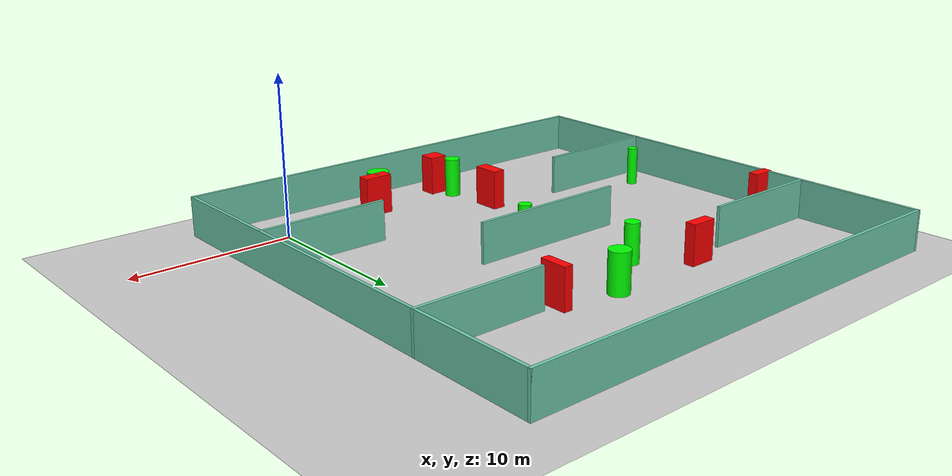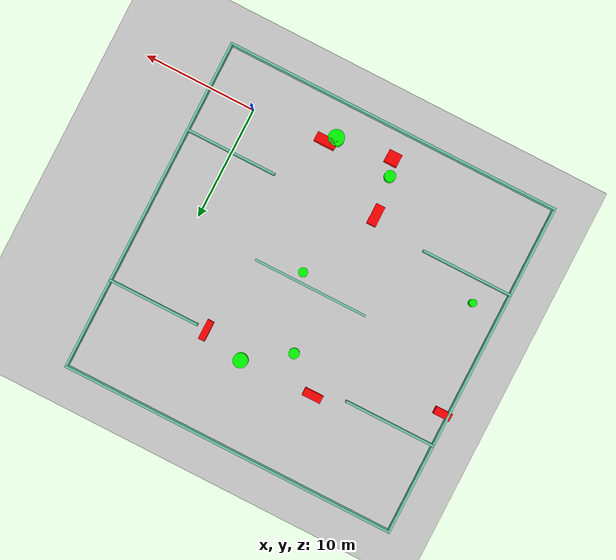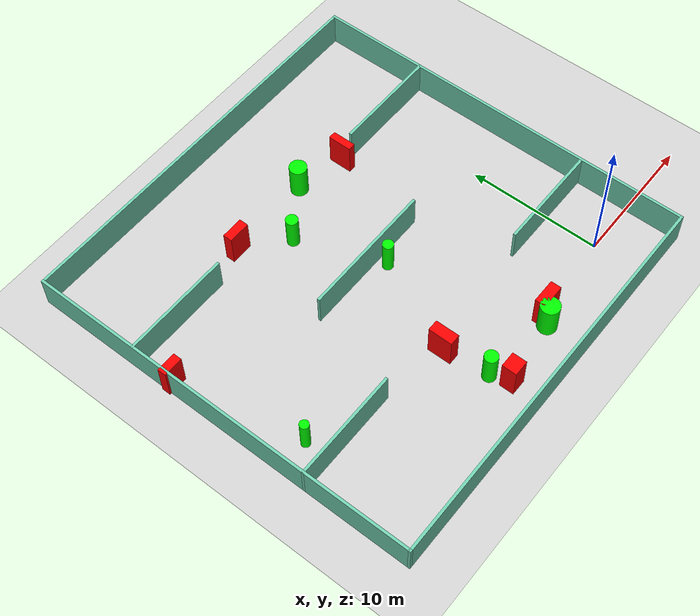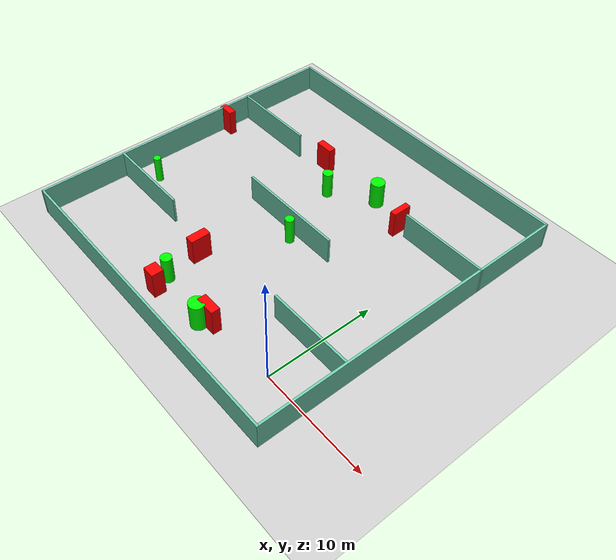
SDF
<sdf version="1.7">
 <world name="default">
  <light name="sun" type="directional">
   <pose>0 0 10 0 -0 0</pose>
   <diffuse>0.8 0.8 0.8 1</diffuse>
   <specular>0.2 0.2 0.2 1</specular>
   <attenuation>
    <range>1000</range>
    <constant>0.9</constant>
    <linear>0.01</linear>
    <quadratic>0.001</quadratic>
   </attenuation>
   <direction>-0.5 0.1 -0.9</direction>
   <spot><inner_angle>0</inner_angle><outer_angle>0</outer_angle><falloff>0</falloff></spot>
  </light>
  <model name="ground_plane">
   <static>1</static>
   <link name="link">
    <collision name="collision">
     <geometry><plane><normal>0 0 1</normal><size>100 100</size></plane></geometry>
     <surface>
      <contact><collide_bitmask>65535</collide_bitmask></contact>
      <friction><ode><mu>100</mu><mu2>50</mu2></ode></friction>
     </surface>
    </collision>
    <visual name="visual">
     <cast_shadows>0</cast_shadows>
     <geometry><plane><normal>0 0 1</normal><size>100 100</size></plane></geometry>
     <material>
      <script><uri>file://media/materials/scripts/gazebo.material</uri><name>Gazebo/Grey</name></script>
     </material>
    </visual>
   </link>
  </model>
  <gravity>0 0 -9.8</gravity>
  <magnetic_field>6e-06 2.3e-05 -4.2e-05</magnetic_field>
  <atmosphere type="adiabatic"/>
  <physics type="ode">
   <max_step_size>0.001</max_step_size>
   <real_time_factor>1</real_time_factor>
   <real_time_update_rate>1000</real_time_update_rate>
  </physics>
  <scene><ambient>0.4 0.4 0.4 1</ambient><background>0.7 0.7 0.7 1</background><shadows>1</shadows></scene>
  <spherical_coordinates>
   <surface_model>EARTH_WGS84</surface_model>
   <latitude_deg>0</latitude_deg>
   <longitude_deg>0</longitude_deg>
   <elevation>0</elevation>
   <heading_deg>0</heading_deg>
  </spherical_coordinates>
  <model name="my_base_walls">
   <link name="Wall_10">
    <collision name="Wall_10_Collision">
     <geometry><box><size>8.2 0.2 2.5</size></box></geometry>
     <pose>0 0 1.25 0 -0 0</pose>
    </collision>
    <visual name="Wall_10_Visual">
     <pose>0 0 1.25 0 -0 0</pose>
     <geometry><box><size>8.2 0.2 2.5</size></box></geometry>
     <material>
      <script><uri>file://media/materials/scripts/gazebo.material</uri><name>Gazebo/Grey</name></script>
      <ambient>0.435294 0.796078 0.67451 1</ambient>
     </material>
     <meta><layer>0</layer></meta>
    </visual>
    <pose>-11 -7 0 0 -0 0</pose>
   </link>
   <link name="Wall_12">
    <collision name="Wall_12_Collision">
     <geometry><box><size>8.2 0.2 2.5</size></box></geometry>
     <pose>0 0 1.25 0 -0 0</pose>
    </collision>
    <visual name="Wall_12_Visual">
     <pose>0 0 1.25 0 -0 0</pose>
     <geometry><box><size>8.2 0.2 2.5</size></box></geometry>
     <material>
      <script><uri>file://media/materials/scripts/gazebo.material</uri><name>Gazebo/Grey</name></script>
      <ambient>0.435294 0.796078 0.67451 1</ambient>
     </material>
     <meta><layer>0</layer></meta>
    </visual>
    <pose>-11 7 0 0 -0 0</pose>
   </link>
   <link name="Wall_14">
    <collision name="Wall_14_Collision">
     <geometry><box><size>8.2 0.2 2.5</size></box></geometry>
     <pose>0 0 1.25 0 -0 0</pose>
    </collision>
    <visual name="Wall_14_Visual">
     <pose>0 0 1.25 0 -0 0</pose>
     <geometry><box><size>8.2 0.2 2.5</size></box></geometry>
     <material>
      <script><uri>file://media/materials/scripts/gazebo.material</uri><name>Gazebo/Grey</name></script>
      <ambient>0.435294 0.796078 0.67451 1</ambient>
     </material>
     <meta><layer>0</layer></meta>
    </visual>
    <pose>11 7 0 0 -0 3.14159</pose>
   </link>
   <link name="Wall_16">
    <collision name="Wall_16_Collision">
     <geometry><box><size>10.2 0.2 2.5</size></box></geometry>
     <pose>0 0 1.25 0 -0 0</pose>
    </collision>
    <visual name="Wall_16_Visual">
     <pose>0 0 1.25 0 -0 0</pose>
     <geometry><box><size>10.2 0.2 2.5</size></box></geometry>
     <material>
      <script><uri>file://media/materials/scripts/gazebo.material</uri><name>Gazebo/Grey</name></script>
      <ambient>0.435294 0.796078 0.67451 1</ambient>
     </material>
     <meta><layer>0</layer></meta>
    </visual>
    <pose>0 0 0 0 -0 3.14159</pose>
   </link>
   <link name="Wall_2">
    <collision name="Wall_2_Collision">
     <geometry><box><size>30.2 0.2 2.5</size></box></geometry>
     <pose>0 0 1.25 0 -0 0</pose>
    </collision>
    <visual name="Wall_2_Visual">
     <pose>0 0 1.25 0 -0 0</pose>
     <geometry><box><size>30.2 0.2 2.5</size></box></geometry>
     <material>
      <script><uri>file://media/materials/scripts/gazebo.material</uri><name>Gazebo/Grey</name></script>
      <ambient>0.435294 0.796078 0.67451 1</ambient>
     </material>
     <meta><layer>0</layer></meta>
    </visual>
    <pose>0 -15 0 0 -0 3.14159</pose>
   </link>
   <link name="Wall_3">
    <collision name="Wall_3_Collision">
     <geometry><box><size>30.2 0.2 2.5</size></box></geometry>
     <pose>0 0 1.25 0 -0 0</pose>
    </collision>
    <visual name="Wall_3_Visual">
     <pose>0 0 1.25 0 -0 0</pose>
     <geometry><box><size>30.2 0.2 2.5</size></box></geometry>
     <material>
      <script><uri>file://media/materials/scripts/gazebo.material</uri><name>Gazebo/Grey</name></script>
      <ambient>0.435294 0.796078 0.67451 1</ambient>
     </material>
     <meta><layer>0</layer></meta>
    </visual>
    <pose>-15 0 0 0 -0 1.5708</pose>
   </link>
   <link name="Wall_4">
    <collision name="Wall_4_Collision">
     <geometry><box><size>30.2 0.2 2.5</size></box></geometry>
     <pose>0 0 1.25 0 -0 0</pose>
    </collision>
    <visual name="Wall_4_Visual">
     <pose>0 0 1.25 0 -0 0</pose>
     <geometry><box><size>30.2 0.2 2.5</size></box></geometry>
     <material>
      <script><uri>file://media/materials/scripts/gazebo.material</uri><name>Gazebo/Grey</name></script>
      <ambient>0.435294 0.796078 0.67451 1</ambient>
     </material>
     <meta><layer>0</layer></meta>
    </visual>
    <pose>0 15 0 0 -0 0</pose>
   </link>
   <link name="Wall_6">
    <collision name="Wall_6_Collision">
     <geometry><box><size>30.2 0.2 2.5</size></box></geometry>
     <pose>0 0 1.25 0 -0 0</pose>
    </collision>
    <visual name="Wall_6_Visual">
     <pose>0 0 1.25 0 -0 0</pose>
     <geometry><box><size>30.2 0.2 2.5</size></box></geometry>
     <material>
      <script><uri>file://media/materials/scripts/gazebo.material</uri><name>Gazebo/Grey</name></script>
      <ambient>0.435294 0.796078 0.67451 1</ambient>
     </material>
     <meta><layer>0</layer></meta>
    </visual>
    <pose>15 0 0 0 -0 1.5708</pose>
   </link>
   <link name="Wall_8">
    <collision name="Wall_8_Collision">
     <geometry><box><size>8.2 0.2 2.5</size></box></geometry>
     <pose>0 0 1.25 0 -0 0</pose>
    </collision>
    <visual name="Wall_8_Visual">
     <pose>0 0 1.25 0 -0 0</pose>
     <geometry><box><size>8.2 0.2 2.5</size></box></geometry>
     <material>
      <script><uri>file://media/materials/scripts/gazebo.material</uri><name>Gazebo/Grey</name></script>
      <ambient>0.435294 0.796078 0.67451 1</ambient>
     </material>
     <meta><layer>0</layer></meta>
    </visual>
    <pose>11 -7 0 0 -0 3.14159</pose>
   </link>
   <static>1</static>
   <pose>-11 11 0 0 -0 0</pose>
  </model>
  <model name="cylinder1">
   <static>1</static>
   <link name="link">
    <inertial>
     <mass>1</mass>
     <inertia><ixx>0.5</ixx><ixy>0</ixy><ixz>0</ixz><iyy>0.5</iyy><iyz>0</iyz><izz>1</izz></inertia>
    </inertial>
    <collision name="collision">
     <geometry><cylinder><radius>0.4022915039793761</radius><length>2.5</length></cylinder></geometry>
    </collision>
    <visual name="visual">
     <geometry><cylinder><radius>0.4022915039793761</radius><length>2.5</length></cylinder></geometry>
     <material>
      <ambient>0 1 0 1</ambient>
      <diffuse>0 1 0 1</diffuse>
      <specular>0.1 0.1 0.1 1</specular>
      <emissive>0 0 0 0</emissive>
     </material>
    </visual>
   </link>
   <pose>-9.885270788904723 10.136464200172302 1.25 0 0 0</pose>
  </model>
  <model name="cylinder2">
   <static>1</static>
   <link name="link">
    <inertial>
     <mass>1</mass>
     <inertia><ixx>0.5</ixx><ixy>0</ixy><ixz>0</ixz><iyy>0.5</iyy><iyz>0</iyz><izz>1</izz></inertia>
    </inertial>
    <collision name="collision">
     <geometry><cylinder><radius>0.45378033854780675</radius><length>2.5</length></cylinder></geometry>
    </collision>
    <visual name="visual">
     <geometry><cylinder><radius>0.45378033854780675</radius><length>2.5</length></cylinder></geometry>
     <material>
      <ambient>0 1 0 1</ambient>
      <diffuse>0 1 0 1</diffuse>
      <specular>0.1 0.1 0.1 1</specular>
      <emissive>0 0 0 0</emissive>
     </material>
    </visual>
   </link>
   <pose>-12.28520656637956 16.44912350950933 1.25 0 0 0</pose>
  </model>
  <model name="cylinder3">
   <static>1</static>
   <link name="link">
    <inertial>
     <mass>1</mass>
     <inertia><ixx>0.5</ixx><ixy>0</ixy><ixz>0</ixz><iyy>0.5</iyy><iyz>0</iyz><izz>1</izz></inertia>
    </inertial>
    <collision name="collision">
     <geometry><cylinder><radius>0.4952631637833155</radius><length>2.5</length></cylinder></geometry>
    </collision>
    <visual name="visual">
     <geometry><cylinder><radius>0.4952631637833155</radius><length>2.5</length></cylinder></geometry>
     <material>
      <ambient>0 1 0 1</ambient>
      <diffuse>0 1 0 1</diffuse>
      <specular>0.1 0.1 0.1 1</specular>
      <emissive>0 0 0 0</emissive>
     </material>
    </visual>
   </link>
   <pose>-12.646714663099198 -0.21405327173893207 1.25 0 0 0</pose>
  </model>
  <model name="cylinder4">
   <static>1</static>
   <link name="link">
    <inertial>
     <mass>1</mass>
     <inertia><ixx>0.5</ixx><ixy>0</ixy><ixz>0</ixz><iyy>0.5</iyy><iyz>0</iyz><izz>1</izz></inertia>
    </inertial>
    <collision name="collision">
     <geometry><cylinder><radius>0.3326023850300209</radius><length>2.5</length></cylinder></geometry>
    </collision>
    <visual name="visual">
     <geometry><cylinder><radius>0.3326023850300209</radius><length>2.5</length></cylinder></geometry>
     <material>
      <ambient>0 1 0 1</ambient>
      <diffuse>0 1 0 1</diffuse>
      <specular>0.1 0.1 0.1 1</specular>
      <emissive>0 0 0 0</emissive>
     </material>
    </visual>
   </link>
   <pose>-23.542484994097972 5.9816562751940925 1.25 0 0 0</pose>
  </model>
  <model name="cylinder5">
   <static>1</static>
   <link name="link">
    <inertial>
     <mass>1</mass>
     <inertia><ixx>0.5</ixx><ixy>0</ixy><ixz>0</ixz><iyy>0.5</iyy><iyz>0</iyz><izz>1</izz></inertia>
    </inertial>
    <collision name="collision">
     <geometry><cylinder><radius>0.6412005782225084</radius><length>2.5</length></cylinder></geometry>
    </collision>
    <visual name="visual">
     <geometry><cylinder><radius>0.6412005782225084</radius><length>2.5</length></cylinder></geometry>
     <material>
      <ambient>0 1 0 1</ambient>
      <diffuse>0 1 0 1</diffuse>
      <specular>0.1 0.1 0.1 1</specular>
      <emissive>0 0 0 0</emissive>
     </material>
    </visual>
   </link>
   <pose>-8.600419884639619 18.98928812964557 1.25 0 0 0</pose>
  </model>
  <model name="cylinder6">
   <static>1</static>
   <link name="link">
    <inertial>
     <mass>1</mass>
     <inertia><ixx>0.5</ixx><ixy>0</ixy><ixz>0</ixz><iyy>0.5</iyy><iyz>0</iyz><izz>1</izz></inertia>
    </inertial>
    <collision name="collision">
     <geometry><cylinder><radius>0.6988703540510226</radius><length>2.5</length></cylinder></geometry>
    </collision>
    <visual name="visual">
     <geometry><cylinder><radius>0.6988703540510226</radius><length>2.5</length></cylinder></geometry>
     <material>
      <ambient>0 1 0 1</ambient>
      <diffuse>0 1 0 1</diffuse>
      <specular>0.1 0.1 0.1 1</specular>
      <emissive>0 0 0 0</emissive>
     </material>
    </visual>
   </link>
   <pose>-7.2474592828101105 -1.0219908230217198 1.25 0 0 0</pose>
  </model>
  <model name="box1">
   <static>1</static>
   <link name="link">
    <inertial>
     <mass>1</mass>
     <inertia><ixx>0.083</ixx><ixy>0</ixy><ixz>0</ixz><iyy>0.083</iyy><iyz>0</iyz><izz>0.083</izz></inertia>
    </inertial>
    <collision name="collision">
     <geometry><box><size>1.6572836526185832 0.6831091123637129 2.5</size></box></geometry>
    </collision>
    <visual name="visual">
     <geometry><box><size>1.6572836526185832 0.6831091123637129 2.5</size></box></geometry>
     <material>
      <ambient>1 0 0 1</ambient>
      <diffuse>1 0 0 1</diffuse>
      <specular>0.1 0.1 0.1 1</specular>
      <emissive>0 0 0 0</emissive>
     </material>
    </visual>
    <sensor name="my_contact" type="contact">
     <contact><collision>box_collision</collision><topic>__default_topic__</topic></contact>
    </sensor>
   </link>
   <pose>-15.241888148637784 18.841581183590325 1.25 0 0 0</pose>
  </model>
  <model name="box2">
   <static>1</static>
   <link name="link">
    <inertial>
     <mass>1</mass>
     <inertia><ixx>0.083</ixx><ixy>0</ixy><ixz>0</ixz><iyy>0.083</iyy><iyz>0</iyz><izz>0.083</izz></inertia>
    </inertial>
    <collision name="collision">
     <geometry><box><size>1.1724435368375623 1.0921440027199458 2.5</size></box></geometry>
    </collision>
    <visual name="visual">
     <geometry><box><size>1.1724435368375623 1.0921440027199458 2.5</size></box></geometry>
     <material>
      <ambient>1 0 0 1</ambient>
      <diffuse>1 0 0 1</diffuse>
      <specular>0.1 0.1 0.1 1</specular>
      <emissive>0 0 0 0</emissive>
     </material>
    </visual>
    <sensor name="my_contact" type="contact">
     <contact><collision>box_collision</collision><topic>__default_topic__</topic></contact>
    </sensor>
   </link>
   <pose>-12.19628602443002 -1.6538930234268578 1.25 0 0 0</pose>
  </model>
  <model name="box3">
   <static>1</static>
   <link name="link">
    <inertial>
     <mass>1</mass>
     <inertia><ixx>0.083</ixx><ixy>0</ixy><ixz>0</ixz><iyy>0.083</iyy><iyz>0</iyz><izz>0.083</izz></inertia>
    </inertial>
    <collision name="collision">
     <geometry><box><size>1.47024459813988 0.6581383170210091 2.5</size></box></geometry>
    </collision>
    <visual name="visual">
     <geometry><box><size>1.47024459813988 0.6581383170210091 2.5</size></box></geometry>
     <material>
      <ambient>1 0 0 1</ambient>
      <diffuse>1 0 0 1</diffuse>
      <specular>0.1 0.1 0.1 1</specular>
      <emissive>0 0 0 0</emissive>
     </material>
    </visual>
    <sensor name="my_contact" type="contact">
     <contact><collision>box_collision</collision><topic>__default_topic__</topic></contact>
    </sensor>
   </link>
   <pose>-25.5076887923683 15.27292238022077 1.25 0 0 0</pose>
  </model>
  <model name="box4">
   <static>1</static>
   <link name="link">
    <inertial>
     <mass>1</mass>
     <inertia><ixx>0.083</ixx><ixy>0</ixy><ixz>0</ixz><iyy>0.083</iyy><iyz>0</iyz><izz>0.083</izz></inertia>
    </inertial>
    <collision name="collision">
     <geometry><box><size>1.834724551471385 0.8023983614522274 2.5</size></box></geometry>
    </collision>
    <visual name="visual">
     <geometry><box><size>1.834724551471385 0.8023983614522274 2.5</size></box></geometry>
     <material>
      <ambient>1 0 0 1</ambient>
      <diffuse>1 0 0 1</diffuse>
      <specular>0.1 0.1 0.1 1</specular>
      <emissive>0 0 0 0</emissive>
     </material>
    </visual>
    <sensor name="my_contact" type="contact">
     <contact><collision>box_collision</collision><topic>__default_topic__</topic></contact>
    </sensor>
   </link>
   <pose>-6.590138076017853 -0.39835610598369975 1.25 0 0 0</pose>
  </model>
  <model name="box5">
   <static>1</static>
   <link name="link">
    <inertial>
     <mass>1</mass>
     <inertia><ixx>0.083</ixx><ixy>0</ixy><ixz>0</ixz><iyy>0.083</iyy><iyz>0</iyz><izz>0.083</izz></inertia>
    </inertial>
    <collision name="collision">
     <geometry><box><size>0.821241294170314 1.7969977818024379 2.5</size></box></geometry>
    </collision>
    <visual name="visual">
     <geometry><box><size>0.821241294170314 1.7969977818024379 2.5</size></box></geometry>
     <material>
      <ambient>1 0 0 1</ambient>
      <diffuse>1 0 0 1</diffuse>
      <specular>0.1 0.1 0.1 1</specular>
      <emissive>0 0 0 0</emissive>
     </material>
    </visual>
    <sensor name="my_contact" type="contact">
     <contact><collision>box_collision</collision><topic>__default_topic__</topic></contact>
    </sensor>
   </link>
   <pose>-13.08435840785227 3.1761827441511885 1.25 0 0 0</pose>
  </model>
  <model name="box6">
   <static>1</static>
   <link name="link">
    <inertial>
     <mass>1</mass>
     <inertia><ixx>0.083</ixx><ixy>0</ixy><ixz>0</ixz><iyy>0.083</iyy><iyz>0</iyz><izz>0.083</izz></inertia>
    </inertial>
    <collision name="collision">
     <geometry><box><size>0.565186071925566 1.7768478196861366 2.5</size></box></geometry>
    </collision>
    <visual name="visual">
     <geometry><box><size>0.565186071925566 1.7768478196861366 2.5</size></box></geometry>
     <material>
      <ambient>1 0 0 1</ambient>
      <diffuse>1 0 0 1</diffuse>
      <specular>0.1 0.1 0.1 1</specular>
      <emissive>0 0 0 0</emissive>
     </material>
    </visual>
    <sensor name="my_contact" type="contact">
     <contact><collision>box_collision</collision><topic>__default_topic__</topic></contact>
    </sensor>
   </link>
   <pose>-4.934636119673673 18.0725964386995 1.25 0 0 0</pose>
  </model>
 </world>
</sdf>
